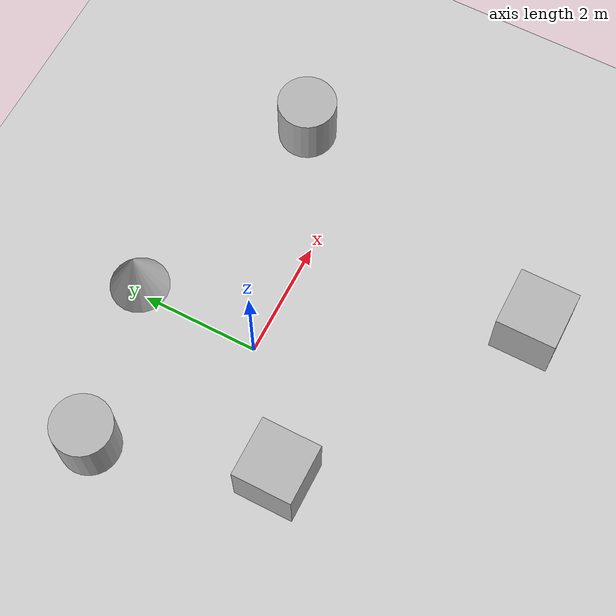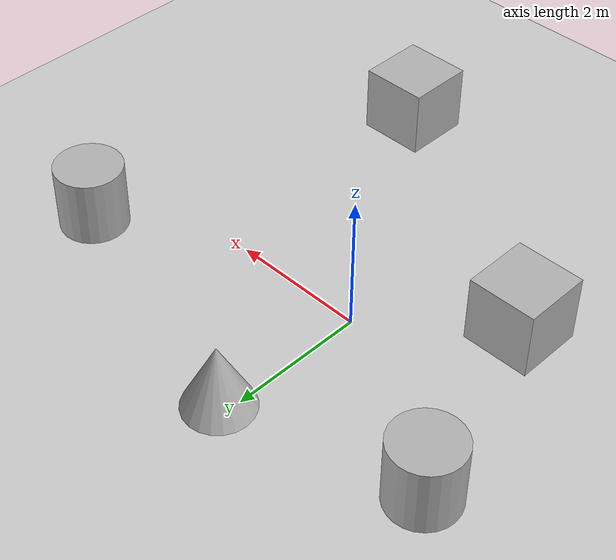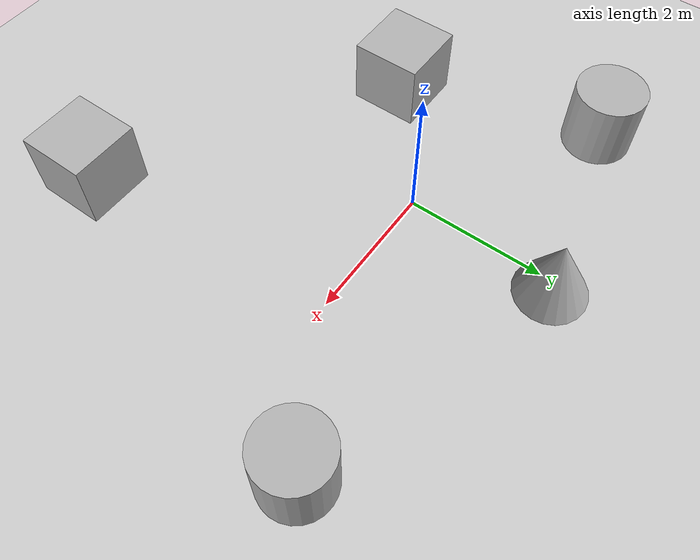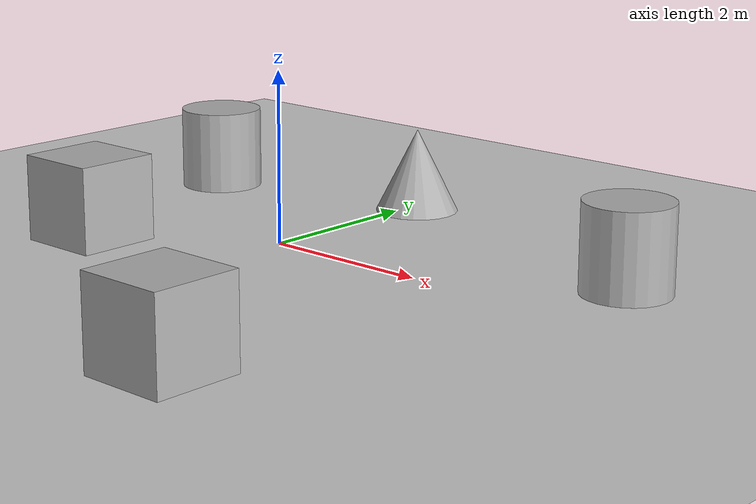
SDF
<sdf version='1.10'>
  <world name='empty'>
    <physics name='1ms' type='ignored'>
      <max_step_size>0.001</max_step_size>
      <real_time_factor>1</real_time_factor>
      <real_time_update_rate>1000</real_time_update_rate>
    </physics>
    <plugin name='gz::sim::systems::Physics' filename='gz-sim-physics-system'/>
    <plugin name='gz::sim::systems::UserCommands' filename='gz-sim-user-commands-system'/>
    <plugin name='gz::sim::systems::SceneBroadcaster' filename='gz-sim-scene-broadcaster-system'/>
    <plugin name='gz::sim::systems::Contact' filename='gz-sim-contact-system'/>
    <gravity>0 0 -9.8000000000000007</gravity>
    <magnetic_field>5.5644999999999998e-06 2.2875799999999999e-05 -4.2388400000000002e-05</magnetic_field>
    <atmosphere type='adiabatic'/>
    <scene>
      <ambient>0.400000006 0.400000006 0.400000006 1</ambient>
      <background>0.699999988 0.699999988 0.699999988 1</background>
      <shadows>true</shadows>
    </scene>
    <model name='ground_plane'>
      <static>true</static>
      <link name='link'>
        <collision name='collision'>
          <geometry>
            <plane>
              <normal>0 0 1</normal>
              <size>100 100</size>
            </plane>
          </geometry>
          <surface>
            <friction>
              <ode/>
            </friction>
            <bounce/>
            <contact/>
          </surface>
        </collision>
        <visual name='visual'>
          <geometry>
            <plane>
              <normal>0 0 1</normal>
              <size>100 100</size>
            </plane>
          </geometry>
          <material>
            <ambient>0.800000012 0.800000012 0.800000012 1</ambient>
            <diffuse>0.800000012 0.800000012 0.800000012 1</diffuse>
            <specular>0.800000012 0.800000012 0.800000012 1</specular>
          </material>
        </visual>
        <pose>0 0 0 0 0 0</pose>
        <inertial>
          <pose>0 0 0 0 0 0</pose>
          <mass>1</mass>
          <inertia>
            <ixx>1</ixx>
            <ixy>0</ixy>
            <ixz>0</ixz>
            <iyy>1</iyy>
            <iyz>0</iyz>
            <izz>1</izz>
          </inertia>
        </inertial>
        <enable_wind>false</enable_wind>
      </link>
      <pose>0 0 0 0 0 0</pose>
      <self_collide>false</self_collide>
    </model>
    <model name='cone'>
      <pose>0.15135885579043418 2.2160748164019219 0.49999999992120586 2.2548609770065589e-12 -8.4123610005560017e-10 1.6327497507674494e-17</pose>
      <link name='cone_link'>
        <inertial>
          <inertia>
            <ixx>0.074999999999999997</ixx>
            <ixy>0</ixy>
            <ixz>0</ixz>
            <iyy>0.074999999999999997</iyy>
            <iyz>0</iyz>
            <izz>0.074999999999999997</izz>
          </inertia>
          <mass>1</mass>
          <pose>0 0 0 0 0 0</pose>
        </inertial>
        <collision name='cone_collision'>
          <geometry>
            <cone>
              <radius>0.5</radius>
              <length>1</length>
            </cone>
          </geometry>
          <surface>
            <friction>
              <ode/>
            </friction>
            <bounce/>
            <contact/>
          </surface>
        </collision>
        <visual name='cone_visual'>
          <geometry>
            <cone>
              <radius>0.5</radius>
              <length>1</length>
            </cone>
          </geometry>
          <material>
            <ambient>0.300000012 0.300000012 0.300000012 1</ambient>
            <diffuse>0.699999988 0.699999988 0.699999988 1</diffuse>
            <specular>1 1 1 1</specular>
          </material>
        </visual>
        <pose>0 0 0 0 0 0</pose>
        <enable_wind>false</enable_wind>
      </link>
      <static>false</static>
      <self_collide>false</self_collide>
    </model>
    <model name='box'>
      <pose>-1.7161874287168741 -1.3419372215463079 0.49999999980497606 1.0048033485058014e-21 -2.4640853465547739e-21 -3.9210766489770922e-22</pose>
      <link name='box_link'>
        <inertial>
          <inertia>
            <ixx>0.16666</ixx>
            <ixy>0</ixy>
            <ixz>0</ixz>
            <iyy>0.16666</iyy>
            <iyz>0</iyz>
            <izz>0.16666</izz>
          </inertia>
          <mass>1</mass>
          <pose>0 0 0 0 0 0</pose>
        </inertial>
        <collision name='box_collision'>
          <geometry>
            <box>
              <size>1 1 1</size>
            </box>
          </geometry>
          <surface>
            <friction>
              <ode/>
            </friction>
            <bounce/>
            <contact/>
          </surface>
        </collision>
        <visual name='box_visual'>
          <geometry>
            <box>
              <size>1 1 1</size>
            </box>
          </geometry>
          <material>
            <ambient>0.300000012 0.300000012 0.300000012 1</ambient>
            <diffuse>0.699999988 0.699999988 0.699999988 1</diffuse>
            <specular>1 1 1 1</specular>
          </material>
        </visual>
        <pose>0 0 0 0 0 0</pose>
        <enable_wind>false</enable_wind>
      </link>
      <static>false</static>
      <self_collide>false</self_collide>
    </model>
    <model name='cylinder'>
      <pose>3.9823946999324491 1.0929535714035261 0.49999942638036005 -2.905740846161755e-19 2.4612464198423721e-19 -4.9501687495648577e-21</pose>
      <link name='cylinder_link'>
        <inertial>
          <inertia>
            <ixx>0.14580000000000001</ixx>
            <ixy>0</ixy>
            <ixz>0</ixz>
            <iyy>0.14580000000000001</iyy>
            <iyz>0</iyz>
            <izz>0.125</izz>
          </inertia>
          <mass>1</mass>
          <pose>0 0 0 0 0 0</pose>
        </inertial>
        <collision name='cylinder_collision'>
          <geometry>
            <cylinder>
              <radius>0.5</radius>
              <length>1</length>
            </cylinder>
          </geometry>
          <surface>
            <friction>
              <ode/>
            </friction>
            <bounce/>
            <contact/>
          </surface>
        </collision>
        <visual name='cylinder_visual'>
          <geometry>
            <cylinder>
              <radius>0.5</radius>
              <length>1</length>
            </cylinder>
          </geometry>
          <material>
            <ambient>0.300000012 0.300000012 0.300000012 1</ambient>
            <diffuse>0.699999988 0.699999988 0.699999988 1</diffuse>
            <specular>1 1 1 1</specular>
          </material>
        </visual>
        <pose>0 0 0 0 0 0</pose>
        <enable_wind>false</enable_wind>
      </link>
      <static>false</static>
      <self_collide>false</self_collide>
    </model>
    <model name='box_0'>
      <pose>2.3078970178157654 -3.8192702493262631 0.49999999990199806 6.2287739151293738e-22 9.3279666454713669e-22 -3.6315533669320137e-22</pose>
      <link name='box_link'>
        <inertial>
          <inertia>
            <ixx>0.16666</ixx>
            <ixy>0</ixy>
            <ixz>0</ixz>
            <iyy>0.16666</iyy>
            <iyz>0</iyz>
            <izz>0.16666</izz>
          </inertia>
          <mass>1</mass>
          <pose>0 0 0 0 0 0</pose>
        </inertial>
        <collision name='box_collision'>
          <geometry>
            <box>
              <size>1 1 1</size>
            </box>
          </geometry>
          <surface>
            <friction>
              <ode/>
            </friction>
            <bounce/>
            <contact/>
          </surface>
        </collision>
        <visual name='box_visual'>
          <geometry>
            <box>
              <size>1 1 1</size>
            </box>
          </geometry>
          <material>
            <ambient>0.300000012 0.300000012 0.300000012 1</ambient>
            <diffuse>0.699999988 0.699999988 0.699999988 1</diffuse>
            <specular>1 1 1 1</specular>
          </material>
        </visual>
        <pose>0 0 0 0 0 0</pose>
        <enable_wind>false</enable_wind>
      </link>
      <static>false</static>
      <self_collide>false</self_collide>
    </model>
    <model name='cylinder_0'>
      <pose>-2.571007650301131 1.518696885947473 0.49999942638036005 5.8891671489838179e-19 1.2074364099299982e-19 4.286567331099724e-21</pose>
      <link name='cylinder_link'>
        <inertial>
          <inertia>
            <ixx>0.14580000000000001</ixx>
            <ixy>0</ixy>
            <ixz>0</ixz>
            <iyy>0.14580000000000001</iyy>
            <iyz>0</iyz>
            <izz>0.125</izz>
          </inertia>
          <mass>1</mass>
          <pose>0 0 0 0 0 0</pose>
        </inertial>
        <collision name='cylinder_collision'>
          <geometry>
            <cylinder>
              <radius>0.5</radius>
              <length>1</length>
            </cylinder>
          </geometry>
          <surface>
            <friction>
              <ode/>
            </friction>
            <bounce/>
            <contact/>
          </surface>
        </collision>
        <visual name='cylinder_visual'>
          <geometry>
            <cylinder>
              <radius>0.5</radius>
              <length>1</length>
            </cylinder>
          </geometry>
          <material>
            <ambient>0.300000012 0.300000012 0.300000012 1</ambient>
            <diffuse>0.699999988 0.699999988 0.699999988 1</diffuse>
            <specular>1 1 1 1</specular>
          </material>
        </visual>
        <pose>0 0 0 0 0 0</pose>
        <enable_wind>false</enable_wind>
      </link>
      <static>false</static>
      <self_collide>false</self_collide>
    </model>
    <light name='sun' type='directional'>
      <pose>0 0 10 0 0 0</pose>
      <cast_shadows>true</cast_shadows>
      <intensity>1</intensity>
      <direction>-0.5 0.10000000000000001 -0.90000000000000002</direction>
      <diffuse>0.800000012 0.800000012 0.800000012 1</diffuse>
      <specular>0.200000003 0.200000003 0.200000003 1</specular>
      <attenuation>
        <range>1000</range>
        <linear>0.0099999997764825821</linear>
        <constant>0.89999997615814209</constant>
        <quadratic>0.0010000000474974513</quadratic>
      </attenuation>
      <spot>
        <inner_angle>0</inner_angle>
        <outer_angle>0</outer_angle>
        <falloff>0</falloff>
      </spot>
    </light>
  </world>
</sdf>
